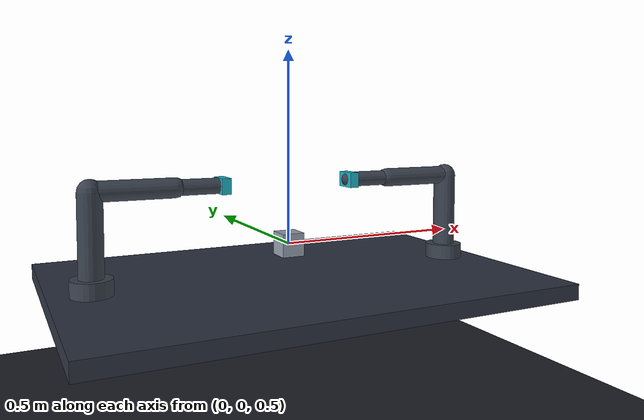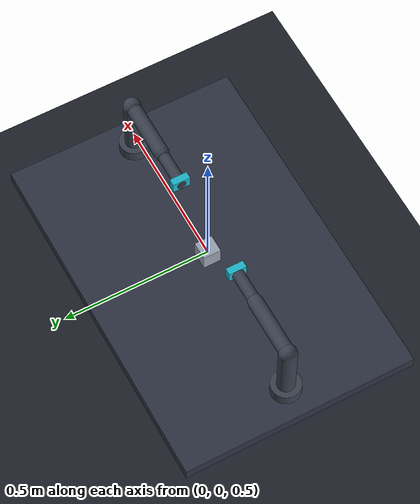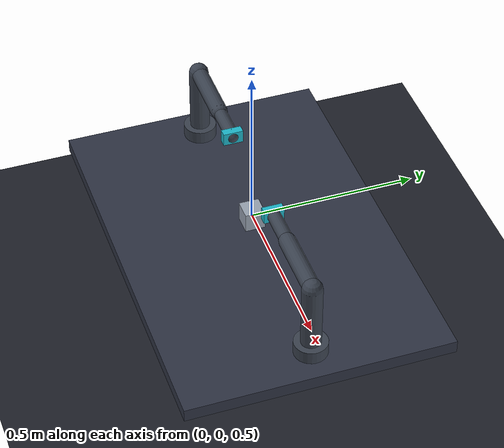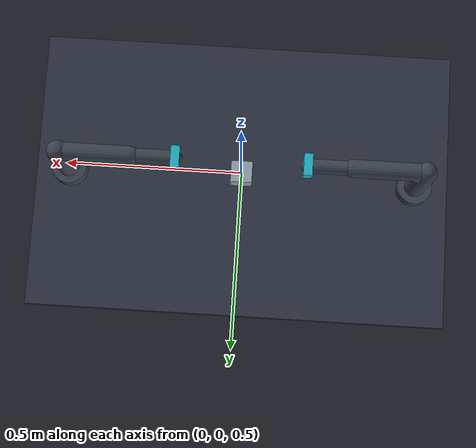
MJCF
<mujoco model="aria_dual_arm_factory">
  <compiler angle="radian" autolimits="true"/>
  <option timestep="0.002" gravity="0 0 -9.81" integrator="implicitfast"/>

  <default>
    <joint damping="1.0" armature="0.05"/>
    <geom friction="1 0.05 0.001" density="800"/>
    <motor ctrllimited="true" ctrlrange="-1 1" gear="8"/>
  </default>

  <asset>
    <material name="floor_mat" rgba="0.12 0.13 0.16 1"/>
    <material name="table_mat" rgba="0.18 0.20 0.26 1"/>
    <material name="arm_mat"   rgba="0.23 0.26 0.31 1"/>
    <material name="grip_mat"  rgba="0.12 0.72 0.80 1"/>
    <material name="part_mat"  rgba="0.60 0.64 0.70 1"/>
  </asset>

  <worldbody>
    <light name="ceiling" pos="0 0 2.2" dir="0 0 -1" diffuse="0.8 0.8 0.8" specular="0.2 0.2 0.2"/>
    <geom name="floor" type="plane" size="3 3 0.1" material="floor_mat"/>

    <!-- 검사대 (정적) -->
    <body name="table" pos="0 0 0.40">
      <geom name="table_top" type="box" size="0.60 0.40 0.02" material="table_mat"/>
    </body>

    <!-- 검사 대상 부품 (free joint — reset에서 도메인 랜덤화) -->
    <body name="part" pos="0 0 0.50">
      <freejoint name="part_free"/>
      <geom name="part_geom" type="box" size="0.03 0.03 0.03" material="part_mat" mass="0.05"/>
    </body>

    <!-- 좌측 팔 -->
    <body name="L_base" pos="-0.50 0 0.42">
      <geom type="cylinder" size="0.05 0.04" material="arm_mat"/>
      <body name="L_link1" pos="0 0 0.04">
        <joint name="L_j1" type="hinge" axis="0 0 1" range="-3.1416 3.1416"/>
        <geom type="capsule" fromto="0 0 0 0 0 0.20" size="0.03" material="arm_mat"/>
        <body name="L_link2" pos="0 0 0.20">
          <joint name="L_j2" type="hinge" axis="0 1 0" range="-2.0 2.0"/>
          <geom type="capsule" fromto="0 0 0 0.20 0 0" size="0.025" material="arm_mat"/>
          <body name="L_link3" pos="0.20 0 0">
            <joint name="L_j3" type="hinge" axis="0 1 0" range="-2.0 2.0"/>
            <geom type="capsule" fromto="0 0 0 0.12 0 0" size="0.02" material="arm_mat"/>
            <body name="L_grip" pos="0.12 0 0">
              <joint name="L_g" type="slide" axis="0 0 1" range="-0.02 0.02"/>
              <geom type="box" size="0.012 0.03 0.02" material="grip_mat"/>
            </body>
          </body>
        </body>
      </body>
    </body>

    <!-- 우측 팔 -->
    <body name="R_base" pos="0.50 0 0.42">
      <geom type="cylinder" size="0.05 0.04" material="arm_mat"/>
      <body name="R_link1" pos="0 0 0.04">
        <joint name="R_j1" type="hinge" axis="0 0 1" range="-3.1416 3.1416"/>
        <geom type="capsule" fromto="0 0 0 0 0 0.20" size="0.03" material="arm_mat"/>
        <body name="R_link2" pos="0 0 0.20">
          <joint name="R_j2" type="hinge" axis="0 1 0" range="-2.0 2.0"/>
          <geom type="capsule" fromto="0 0 0 -0.20 0 0" size="0.025" material="arm_mat"/>
          <body name="R_link3" pos="-0.20 0 0">
            <joint name="R_j3" type="hinge" axis="0 1 0" range="-2.0 2.0"/>
            <geom type="capsule" fromto="0 0 0 -0.12 0 0" size="0.02" material="arm_mat"/>
            <body name="R_grip" pos="-0.12 0 0">
              <joint name="R_g" type="slide" axis="0 0 1" range="-0.02 0.02"/>
              <geom type="box" size="0.012 0.03 0.02" material="grip_mat"/>
            </body>
          </body>
        </body>
      </body>
    </body>
  </worldbody>

  <actuator>
    <motor name="L_j1" joint="L_j1"/>
    <motor name="L_j2" joint="L_j2"/>
    <motor name="L_j3" joint="L_j3"/>
    <motor name="L_g"  joint="L_g" gear="20"/>
    <motor name="R_j1" joint="R_j1"/>
    <motor name="R_j2" joint="R_j2"/>
    <motor name="R_j3" joint="R_j3"/>
    <motor name="R_g"  joint="R_g" gear="20"/>
  </actuator>
</mujoco>
